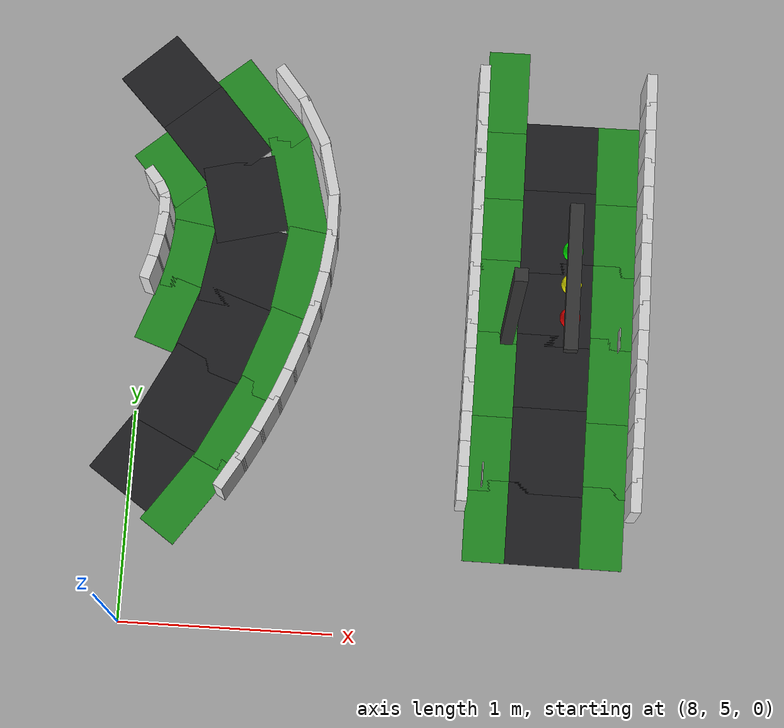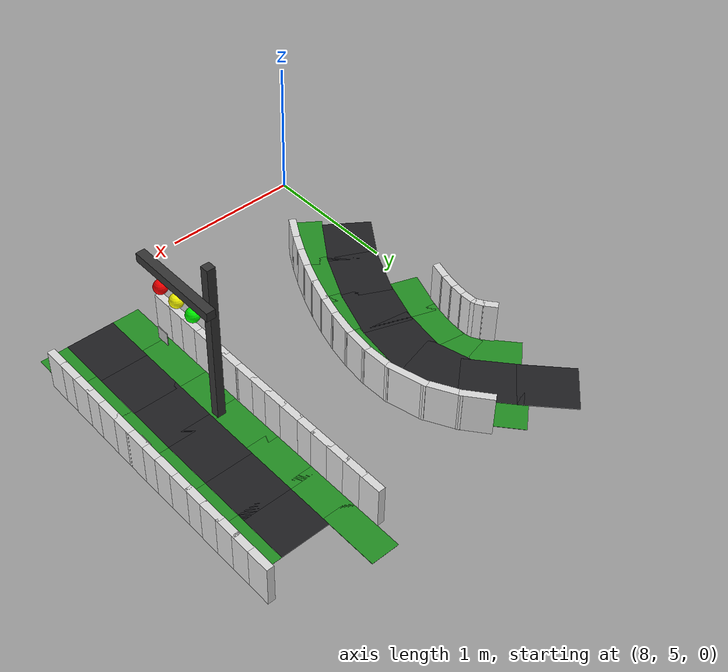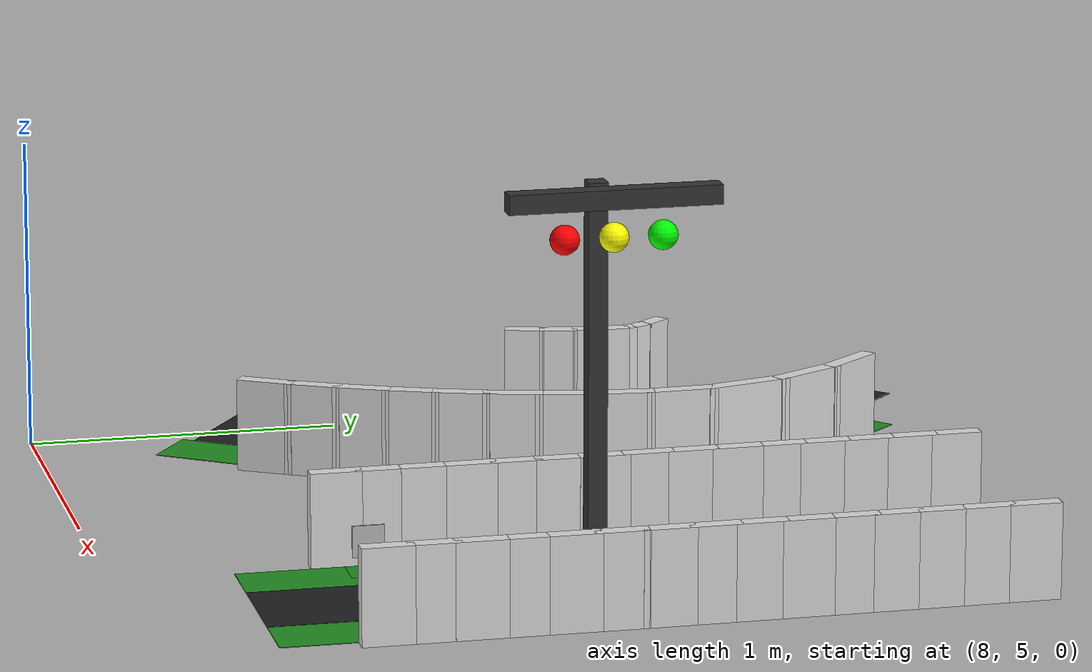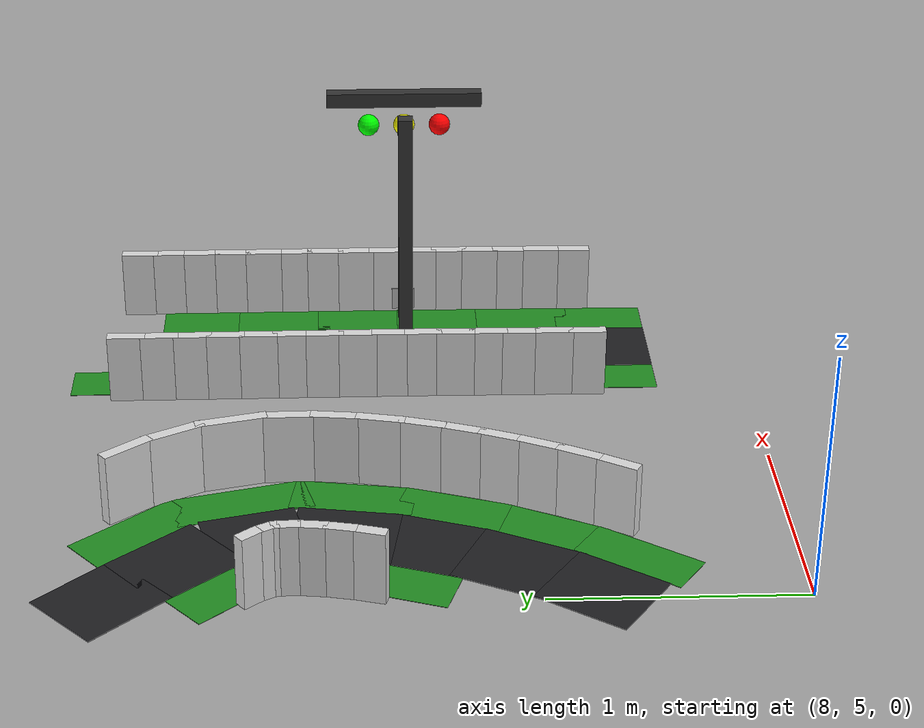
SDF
<sdf version="1.8">
 <world name="it_arena_track">
  <model name="it_arena_track_static">
   <static>true</static>
   <link name="surface_main_0">
    <pose>9.9654 6.6465 0.0015 0 0 1.57391</pose>
    <collision name="surface_main_0_col">
     <geometry><box><size>0.4140 0.3500 0.0030</size></box></geometry>
    </collision>
    <visual name="surface_main_0_vis">
     <geometry><box><size>0.4140 0.3500 0.0030</size></box></geometry>
     <material><ambient>0.12 0.12 0.13 1</ambient><diffuse>0.12 0.12 0.13 1</diffuse></material>
    </visual>
   </link>
   <link name="surface_main_1">
    <pose>9.9643 7.0064 0.0015 0 0 1.57391</pose>
    <collision name="surface_main_1_col">
     <geometry><box><size>0.4140 0.3500 0.0030</size></box></geometry>
    </collision>
    <visual name="surface_main_1_vis">
     <geometry><box><size>0.4140 0.3500 0.0030</size></box></geometry>
     <material><ambient>0.12 0.12 0.13 1</ambient><diffuse>0.12 0.12 0.13 1</diffuse></material>
    </visual>
   </link>
   <link name="surface_main_2">
    <pose>9.9633 7.3564 0.0015 0 0 1.57374</pose>
    <collision name="surface_main_2_col">
     <geometry><box><size>0.3910 0.3500 0.0030</size></box></geometry>
    </collision>
    <visual name="surface_main_2_vis">
     <geometry><box><size>0.3910 0.3500 0.0030</size></box></geometry>
     <material><ambient>0.12 0.12 0.13 1</ambient><diffuse>0.12 0.12 0.13 1</diffuse></material>
    </visual>
   </link>
   <link name="surface_main_40">
    <pose>8.0481 7.6364 0.0015 0 0 -0.81055</pose>
    <collision name="surface_main_40_col">
     <geometry><box><size>0.3908 0.3500 0.0030</size></box></geometry>
    </collision>
    <visual name="surface_main_40_vis">
     <geometry><box><size>0.3908 0.3500 0.0030</size></box></geometry>
     <material><ambient>0.12 0.12 0.13 1</ambient><diffuse>0.12 0.12 0.13 1</diffuse></material>
    </visual>
   </link>
   <link name="surface_main_41">
    <pose>8.2829 7.3778 0.0015 0 0 -0.85532</pose>
    <collision name="surface_main_41_col">
     <geometry><box><size>0.4128 0.3500 0.0030</size></box></geometry>
    </collision>
    <visual name="surface_main_41_vis">
     <geometry><box><size>0.4128 0.3500 0.0030</size></box></geometry>
     <material><ambient>0.12 0.12 0.13 1</ambient><diffuse>0.12 0.12 0.13 1</diffuse></material>
    </visual>
   </link>
   <link name="surface_main_42">
    <pose>8.4418 7.0802 0.0015 0 0 -1.32233</pose>
    <collision name="surface_main_42_col">
     <geometry><box><size>0.3847 0.3500 0.0030</size></box></geometry>
    </collision>
    <visual name="surface_main_42_vis">
     <geometry><box><size>0.3847 0.3500 0.0030</size></box></geometry>
     <material><ambient>0.12 0.12 0.13 1</ambient><diffuse>0.12 0.12 0.13 1</diffuse></material>
    </visual>
   </link>
   <link name="surface_main_43">
    <pose>8.4551 6.7408 0.0015 0 0 -1.72632</pose>
    <collision name="surface_main_43_col">
     <geometry><box><size>0.4129 0.3500 0.0030</size></box></geometry>
    </collision>
    <visual name="surface_main_43_vis">
     <geometry><box><size>0.4129 0.3500 0.0030</size></box></geometry>
     <material><ambient>0.12 0.12 0.13 1</ambient><diffuse>0.12 0.12 0.13 1</diffuse></material>
    </visual>
   </link>
   <link name="surface_main_44">
    <pose>8.3713 6.4030 0.0015 0 0 -1.90638</pose>
    <collision name="surface_main_44_col">
     <geometry><box><size>0.3906 0.3500 0.0030</size></box></geometry>
    </collision>
    <visual name="surface_main_44_vis">
     <geometry><box><size>0.3906 0.3500 0.0030</size></box></geometry>
     <material><ambient>0.12 0.12 0.13 1</ambient><diffuse>0.12 0.12 0.13 1</diffuse></material>
    </visual>
   </link>
   <link name="surface_main_45">
    <pose>8.2349 6.0818 0.0015 0 0 -2.03484</pose>
    <collision name="surface_main_45_col">
     <geometry><box><size>0.4137 0.3500 0.0030</size></box></geometry>
    </collision>
    <visual name="surface_main_45_vis">
     <geometry><box><size>0.4137 0.3500 0.0030</size></box></geometry>
     <material><ambient>0.12 0.12 0.13 1</ambient><diffuse>0.12 0.12 0.13 1</diffuse></material>
    </visual>
   </link>
   <link name="surface_main_46">
    <pose>8.0572 5.7820 0.0015 0 0 -2.18125</pose>
    <collision name="surface_main_46_col">
     <geometry><box><size>0.3902 0.3500 0.0030</size></box></geometry>
    </collision>
    <visual name="surface_main_46_vis">
     <geometry><box><size>0.3902 0.3500 0.0030</size></box></geometry>
     <material><ambient>0.12 0.12 0.13 1</ambient><diffuse>0.12 0.12 0.13 1</diffuse></material>
    </visual>
   </link>
   <link name="surface_main_130">
    <pose>9.9599 5.5766 0.0015 0 0 1.56391</pose>
    <collision name="surface_main_130_col">
     <geometry><box><size>0.3910 0.3500 0.0030</size></box></geometry>
    </collision>
    <visual name="surface_main_130_vis">
     <geometry><box><size>0.3910 0.3500 0.0030</size></box></geometry>
     <material><ambient>0.12 0.12 0.13 1</ambient><diffuse>0.12 0.12 0.13 1</diffuse></material>
    </visual>
   </link>
   <link name="surface_main_131">
    <pose>9.9623 5.9266 0.0015 0 0 1.56396</pose>
    <collision name="surface_main_131_col">
     <geometry><box><size>0.4140 0.3500 0.0030</size></box></geometry>
    </collision>
    <visual name="surface_main_131_vis">
     <geometry><box><size>0.4140 0.3500 0.0030</size></box></geometry>
     <material><ambient>0.12 0.12 0.13 1</ambient><diffuse>0.12 0.12 0.13 1</diffuse></material>
    </visual>
   </link>
   <link name="surface_main_132">
    <pose>9.9648 6.2865 0.0015 0 0 1.56405</pose>
    <collision name="surface_main_132_col">
     <geometry><box><size>0.4140 0.3500 0.0030</size></box></geometry>
    </collision>
    <visual name="surface_main_132_vis">
     <geometry><box><size>0.4140 0.3500 0.0030</size></box></geometry>
     <material><ambient>0.12 0.12 0.13 1</ambient><diffuse>0.12 0.12 0.13 1</diffuse></material>
    </visual>
   </link>
   <link name="grass_main_left_0">
    <pose>9.6904 6.6463 0.0010 0 0 1.57392</pose>
    <collision name="grass_main_left_0_col">
     <geometry><box><size>0.4127 0.2000 0.0020</size></box></geometry>
    </collision>
    <visual name="grass_main_left_0_vis">
     <geometry><box><size>0.4127 0.2000 0.0020</size></box></geometry>
     <material><ambient>0.13 0.55 0.13 1</ambient><diffuse>0.13 0.55 0.13 1</diffuse></material>
    </visual>
   </link>
   <link name="grass_main_left_1">
    <pose>9.6893 7.0058 0.0010 0 0 1.57391</pose>
    <collision name="grass_main_left_1_col">
     <geometry><box><size>0.4141 0.2000 0.0020</size></box></geometry>
    </collision>
    <visual name="grass_main_left_1_vis">
     <geometry><box><size>0.4141 0.2000 0.0020</size></box></geometry>
     <material><ambient>0.13 0.55 0.13 1</ambient><diffuse>0.13 0.55 0.13 1</diffuse></material>
    </visual>
   </link>
   <link name="grass_main_left_2">
    <pose>9.6883 7.3556 0.0010 0 0 1.57374</pose>
    <collision name="grass_main_left_2_col">
     <geometry><box><size>0.3905 0.2000 0.0020</size></box></geometry>
    </collision>
    <visual name="grass_main_left_2_vis">
     <geometry><box><size>0.3905 0.2000 0.0020</size></box></geometry>
     <material><ambient>0.13 0.55 0.13 1</ambient><diffuse>0.13 0.55 0.13 1</diffuse></material>
    </visual>
   </link>
   <link name="grass_main_left_3">
    <pose>9.6872 7.7053 0.0010 0 0 1.57396</pose>
    <collision name="grass_main_left_3_col">
     <geometry><box><size>0.4138 0.2000 0.0020</size></box></geometry>
    </collision>
    <visual name="grass_main_left_3_vis">
     <geometry><box><size>0.4138 0.2000 0.0020</size></box></geometry>
     <material><ambient>0.13 0.55 0.13 1</ambient><diffuse>0.13 0.55 0.13 1</diffuse></material>
    </visual>
   </link>
   <link name="grass_main_left_41">
    <pose>8.4961 7.5483 0.0010 0 0 -0.86175</pose>
    <collision name="grass_main_left_41_col">
     <geometry><box><size>0.4898 0.2000 0.0020</size></box></geometry>
    </collision>
    <visual name="grass_main_left_41_vis">
     <geometry><box><size>0.4898 0.2000 0.0020</size></box></geometry>
     <material><ambient>0.13 0.55 0.13 1</ambient><diffuse>0.13 0.55 0.13 1</diffuse></material>
    </visual>
   </link>
   <link name="grass_main_left_42">
    <pose>8.6963 7.1499 0.0010 0 0 -1.31639</pose>
    <collision name="grass_main_left_42_col">
     <geometry><box><size>0.5626 0.2000 0.0020</size></box></geometry>
    </collision>
    <visual name="grass_main_left_42_vis">
     <geometry><box><size>0.5626 0.2000 0.0020</size></box></geometry>
     <material><ambient>0.13 0.55 0.13 1</ambient><diffuse>0.13 0.55 0.13 1</diffuse></material>
    </visual>
   </link>
   <link name="grass_main_left_43">
    <pose>8.7255 6.7031 0.0010 0 0 -1.72366</pose>
    <collision name="grass_main_left_43_col">
     <geometry><box><size>0.4889 0.2000 0.0020</size></box></geometry>
    </collision>
    <visual name="grass_main_left_43_vis">
     <geometry><box><size>0.4889 0.2000 0.0020</size></box></geometry>
     <material><ambient>0.13 0.55 0.13 1</ambient><diffuse>0.13 0.55 0.13 1</diffuse></material>
    </visual>
   </link>
   <link name="grass_main_left_44">
    <pose>8.6309 6.3143 0.0010 0 0 -1.90576</pose>
    <collision name="grass_main_left_44_col">
     <geometry><box><size>0.4353 0.2000 0.0020</size></box></geometry>
    </collision>
    <visual name="grass_main_left_44_vis">
     <geometry><box><size>0.4353 0.2000 0.0020</size></box></geometry>
     <material><ambient>0.13 0.55 0.13 1</ambient><diffuse>0.13 0.55 0.13 1</diffuse></material>
    </visual>
   </link>
   <link name="grass_main_left_45">
    <pose>8.4802 5.9588 0.0010 0 0 -2.03493</pose>
    <collision name="grass_main_left_45_col">
     <geometry><box><size>0.4546 0.2000 0.0020</size></box></geometry>
    </collision>
    <visual name="grass_main_left_45_vis">
     <geometry><box><size>0.4546 0.2000 0.0020</size></box></geometry>
     <material><ambient>0.13 0.55 0.13 1</ambient><diffuse>0.13 0.55 0.13 1</diffuse></material>
    </visual>
   </link>
   <link name="grass_main_left_46">
    <pose>8.2764 5.6188 0.0010 0 0 -2.18571</pose>
    <collision name="grass_main_left_46_col">
     <geometry><box><size>0.4597 0.2000 0.0020</size></box></geometry>
    </collision>
    <visual name="grass_main_left_46_vis">
     <geometry><box><size>0.4597 0.2000 0.0020</size></box></geometry>
     <material><ambient>0.13 0.55 0.13 1</ambient><diffuse>0.13 0.55 0.13 1</diffuse></material>
    </visual>
   </link>
   <link name="grass_main_left_125">
    <pose>9.6849 5.5783 0.0010 0 0 1.56391</pose>
    <collision name="grass_main_left_125_col">
     <geometry><box><size>0.3910 0.2000 0.0020</size></box></geometry>
    </collision>
    <visual name="grass_main_left_125_vis">
     <geometry><box><size>0.3910 0.2000 0.0020</size></box></geometry>
     <material><ambient>0.13 0.55 0.13 1</ambient><diffuse>0.13 0.55 0.13 1</diffuse></material>
    </visual>
   </link>
   <link name="grass_main_left_126">
    <pose>9.6873 5.9282 0.0010 0 0 1.56396</pose>
    <collision name="grass_main_left_126_col">
     <geometry><box><size>0.4140 0.2000 0.0020</size></box></geometry>
    </collision>
    <visual name="grass_main_left_126_vis">
     <geometry><box><size>0.4140 0.2000 0.0020</size></box></geometry>
     <material><ambient>0.13 0.55 0.13 1</ambient><diffuse>0.13 0.55 0.13 1</diffuse></material>
    </visual>
   </link>
   <link name="grass_main_left_127">
    <pose>9.6898 6.2875 0.0010 0 0 1.56404</pose>
    <collision name="grass_main_left_127_col">
     <geometry><box><size>0.4125 0.2000 0.0020</size></box></geometry>
    </collision>
    <visual name="grass_main_left_127_vis">
     <geometry><box><size>0.4125 0.2000 0.0020</size></box></geometry>
     <material><ambient>0.13 0.55 0.13 1</ambient><diffuse>0.13 0.55 0.13 1</diffuse></material>
    </visual>
   </link>
   <link name="grass_main_right_0">
    <pose>10.2404 6.6466 0.0010 0 0 1.57390</pose>
    <collision name="grass_main_right_0_col">
     <geometry><box><size>0.4152 0.2000 0.0020</size></box></geometry>
    </collision>
    <visual name="grass_main_right_0_vis">
     <geometry><box><size>0.4152 0.2000 0.0020</size></box></geometry>
     <material><ambient>0.13 0.55 0.13 1</ambient><diffuse>0.13 0.55 0.13 1</diffuse></material>
    </visual>
   </link>
   <link name="grass_main_right_1">
    <pose>10.2393 7.0071 0.0010 0 0 1.57391</pose>
    <collision name="grass_main_right_1_col">
     <geometry><box><size>0.4138 0.2000 0.0020</size></box></geometry>
    </collision>
    <visual name="grass_main_right_1_vis">
     <geometry><box><size>0.4138 0.2000 0.0020</size></box></geometry>
     <material><ambient>0.13 0.55 0.13 1</ambient><diffuse>0.13 0.55 0.13 1</diffuse></material>
    </visual>
   </link>
   <link name="grass_main_right_2">
    <pose>10.2383 7.3572 0.0010 0 0 1.57374</pose>
    <collision name="grass_main_right_2_col">
     <geometry><box><size>0.3914 0.2000 0.0020</size></box></geometry>
    </collision>
    <visual name="grass_main_right_2_vis">
     <geometry><box><size>0.3914 0.2000 0.0020</size></box></geometry>
     <material><ambient>0.13 0.55 0.13 1</ambient><diffuse>0.13 0.55 0.13 1</diffuse></material>
    </visual>
   </link>
   <link name="grass_main_right_37">
    <pose>8.0697 7.2074 0.0010 0 0 -0.84594</pose>
    <collision name="grass_main_right_37_col">
     <geometry><box><size>0.3359 0.2000 0.0020</size></box></geometry>
    </collision>
    <visual name="grass_main_right_37_vis">
     <geometry><box><size>0.3359 0.2000 0.0020</size></box></geometry>
     <material><ambient>0.13 0.55 0.13 1</ambient><diffuse>0.13 0.55 0.13 1</diffuse></material>
    </visual>
   </link>
   <link name="grass_main_right_38">
    <pose>8.1872 7.0106 0.0010 0 0 -1.33849</pose>
    <collision name="grass_main_right_38_col">
     <geometry><box><size>0.2067 0.2000 0.0020</size></box></geometry>
    </collision>
    <visual name="grass_main_right_38_vis">
     <geometry><box><size>0.2067 0.2000 0.0020</size></box></geometry>
     <material><ambient>0.13 0.55 0.13 1</ambient><diffuse>0.13 0.55 0.13 1</diffuse></material>
    </visual>
   </link>
   <link name="grass_main_right_39">
    <pose>8.1847 6.7784 0.0010 0 0 -1.73018</pose>
    <collision name="grass_main_right_39_col">
     <geometry><box><size>0.3370 0.2000 0.0020</size></box></geometry>
    </collision>
    <visual name="grass_main_right_39_vis">
     <geometry><box><size>0.3370 0.2000 0.0020</size></box></geometry>
     <material><ambient>0.13 0.55 0.13 1</ambient><diffuse>0.13 0.55 0.13 1</diffuse></material>
    </visual>
   </link>
   <link name="grass_main_right_40">
    <pose>8.1118 6.4918 0.0010 0 0 -1.90716</pose>
    <collision name="grass_main_right_40_col">
     <geometry><box><size>0.3460 0.2000 0.0020</size></box></geometry>
    </collision>
    <visual name="grass_main_right_40_vis">
     <geometry><box><size>0.3460 0.2000 0.0020</size></box></geometry>
     <material><ambient>0.13 0.55 0.13 1</ambient><diffuse>0.13 0.55 0.13 1</diffuse></material>
    </visual>
   </link>
   <link name="grass_main_right_124">
    <pose>10.2349 5.5750 0.0010 0 0 1.56391</pose>
    <collision name="grass_main_right_124_col">
     <geometry><box><size>0.3910 0.2000 0.0020</size></box></geometry>
    </collision>
    <visual name="grass_main_right_124_vis">
     <geometry><box><size>0.3910 0.2000 0.0020</size></box></geometry>
     <material><ambient>0.13 0.55 0.13 1</ambient><diffuse>0.13 0.55 0.13 1</diffuse></material>
    </visual>
   </link>
   <link name="grass_main_right_125">
    <pose>10.2373 5.9249 0.0010 0 0 1.56396</pose>
    <collision name="grass_main_right_125_col">
     <geometry><box><size>0.4140 0.2000 0.0020</size></box></geometry>
    </collision>
    <visual name="grass_main_right_125_vis">
     <geometry><box><size>0.4140 0.2000 0.0020</size></box></geometry>
     <material><ambient>0.13 0.55 0.13 1</ambient><diffuse>0.13 0.55 0.13 1</diffuse></material>
    </visual>
   </link>
   <link name="grass_main_right_126">
    <pose>10.2398 6.2855 0.0010 0 0 1.56406</pose>
    <collision name="grass_main_right_126_col">
     <geometry><box><size>0.4154 0.2000 0.0020</size></box></geometry>
    </collision>
    <visual name="grass_main_right_126_vis">
     <geometry><box><size>0.4154 0.2000 0.0020</size></box></geometry>
     <material><ambient>0.13 0.55 0.13 1</ambient><diffuse>0.13 0.55 0.13 1</diffuse></material>
    </visual>
   </link>
   <link name="walls_main_left_0">
    <pose>9.5658 6.5361 0.1500 0 0 1.57411</pose>
    <collision name="walls_main_left_0_col">
     <geometry><box><size>0.1587 0.0500 0.3000</size></box></geometry>
     <surface><friction><ode><mu>0.8</mu><mu2>0.8</mu2></ode></friction></surface>
    </collision>
    <visual name="walls_main_left_0_vis">
     <geometry><box><size>0.1587 0.0500 0.3000</size></box></geometry>
     <material><ambient>0.85 0.85 0.85 1</ambient><diffuse>0.85 0.85 0.85 1</diffuse></material>
    </visual>
   </link>
   <link name="walls_main_left_1">
    <pose>9.5653 6.6754 0.1500 0 0 1.57365</pose>
    <collision name="walls_main_left_1_col">
     <geometry><box><size>0.1617 0.0500 0.3000</size></box></geometry>
     <surface><friction><ode><mu>0.8</mu><mu2>0.8</mu2></ode></friction></surface>
    </collision>
    <visual name="walls_main_left_1_vis">
     <geometry><box><size>0.1617 0.0500 0.3000</size></box></geometry>
     <material><ambient>0.85 0.85 0.85 1</ambient><diffuse>0.85 0.85 0.85 1</diffuse></material>
    </visual>
   </link>
   <link name="walls_main_left_2">
    <pose>9.5649 6.8153 0.1500 0 0 1.57380</pose>
    <collision name="walls_main_left_2_col">
     <geometry><box><size>0.1601 0.0500 0.3000</size></box></geometry>
     <surface><friction><ode><mu>0.8</mu><mu2>0.8</mu2></ode></friction></surface>
    </collision>
    <visual name="walls_main_left_2_vis">
     <geometry><box><size>0.1601 0.0500 0.3000</size></box></geometry>
     <material><ambient>0.85 0.85 0.85 1</ambient><diffuse>0.85 0.85 0.85 1</diffuse></material>
    </visual>
   </link>
   <link name="walls_main_left_3">
    <pose>9.5645 6.9551 0.1500 0 0 1.57394</pose>
    <collision name="walls_main_left_3_col">
     <geometry><box><size>0.1617 0.0500 0.3000</size></box></geometry>
     <surface><friction><ode><mu>0.8</mu><mu2>0.8</mu2></ode></friction></surface>
    </collision>
    <visual name="walls_main_left_3_vis">
     <geometry><box><size>0.1617 0.0500 0.3000</size></box></geometry>
     <material><ambient>0.85 0.85 0.85 1</ambient><diffuse>0.85 0.85 0.85 1</diffuse></material>
    </visual>
   </link>
   <link name="walls_main_left_4">
    <pose>9.5640 7.0953 0.1500 0 0 1.57422</pose>
    <collision name="walls_main_left_4_col">
     <geometry><box><size>0.1608 0.0500 0.3000</size></box></geometry>
     <surface><friction><ode><mu>0.8</mu><mu2>0.8</mu2></ode></friction></surface>
    </collision>
    <visual name="walls_main_left_4_vis">
     <geometry><box><size>0.1608 0.0500 0.3000</size></box></geometry>
     <material><ambient>0.85 0.85 0.85 1</ambient><diffuse>0.85 0.85 0.85 1</diffuse></material>
    </visual>
   </link>
   <link name="walls_main_left_5">
    <pose>9.5636 7.2353 0.1500 0 0 1.57351</pose>
    <collision name="walls_main_left_5_col">
     <geometry><box><size>0.1612 0.0500 0.3000</size></box></geometry>
     <surface><friction><ode><mu>0.8</mu><mu2>0.8</mu2></ode></friction></surface>
    </collision>
    <visual name="walls_main_left_5_vis">
     <geometry><box><size>0.1612 0.0500 0.3000</size></box></geometry>
     <material><ambient>0.85 0.85 0.85 1</ambient><diffuse>0.85 0.85 0.85 1</diffuse></material>
    </visual>
   </link>
   <link name="walls_main_left_6">
    <pose>9.5632 7.3751 0.1500 0 0 1.57394</pose>
    <collision name="walls_main_left_6_col">
     <geometry><box><size>0.1603 0.0500 0.3000</size></box></geometry>
     <surface><friction><ode><mu>0.8</mu><mu2>0.8</mu2></ode></friction></surface>
    </collision>
    <visual name="walls_main_left_6_vis">
     <geometry><box><size>0.1603 0.0500 0.3000</size></box></geometry>
     <material><ambient>0.85 0.85 0.85 1</ambient><diffuse>0.85 0.85 0.85 1</diffuse></material>
    </visual>
   </link>
   <link name="walls_main_left_7">
    <pose>9.5628 7.5152 0.1500 0 0 1.57380</pose>
    <collision name="walls_main_left_7_col">
     <geometry><box><size>0.1619 0.0500 0.3000</size></box></geometry>
     <surface><friction><ode><mu>0.8</mu><mu2>0.8</mu2></ode></friction></surface>
    </collision>
    <visual name="walls_main_left_7_vis">
     <geometry><box><size>0.1619 0.0500 0.3000</size></box></geometry>
     <material><ambient>0.85 0.85 0.85 1</ambient><diffuse>0.85 0.85 0.85 1</diffuse></material>
    </visual>
   </link>
   <link name="walls_main_left_8">
    <pose>9.5624 7.6553 0.1500 0 0 1.57365</pose>
    <collision name="walls_main_left_8_col">
     <geometry><box><size>0.1603 0.0500 0.3000</size></box></geometry>
     <surface><friction><ode><mu>0.8</mu><mu2>0.8</mu2></ode></friction></surface>
    </collision>
    <visual name="walls_main_left_8_vis">
     <geometry><box><size>0.1603 0.0500 0.3000</size></box></geometry>
     <material><ambient>0.85 0.85 0.85 1</ambient><diffuse>0.85 0.85 0.85 1</diffuse></material>
    </visual>
   </link>
   <link name="walls_main_left_104">
    <pose>8.6478 7.5783 0.1500 0 0 -0.89386</pose>
    <collision name="walls_main_left_104_col">
     <geometry><box><size>0.2237 0.0500 0.3000</size></box></geometry>
     <surface><friction><ode><mu>0.8</mu><mu2>0.8</mu2></ode></friction></surface>
    </collision>
    <visual name="walls_main_left_104_vis">
     <geometry><box><size>0.2237 0.0500 0.3000</size></box></geometry>
     <material><ambient>0.85 0.85 0.85 1</ambient><diffuse>0.85 0.85 0.85 1</diffuse></material>
    </visual>
   </link>
   <link name="walls_main_left_105">
    <pose>8.7625 7.4032 0.1500 0 0 -1.07463</pose>
    <collision name="walls_main_left_105_col">
     <geometry><box><size>0.2597 0.0500 0.3000</size></box></geometry>
     <surface><friction><ode><mu>0.8</mu><mu2>0.8</mu2></ode></friction></surface>
    </collision>
    <visual name="walls_main_left_105_vis">
     <geometry><box><size>0.2597 0.0500 0.3000</size></box></geometry>
     <material><ambient>0.85 0.85 0.85 1</ambient><diffuse>0.85 0.85 0.85 1</diffuse></material>
    </visual>
   </link>
   <link name="walls_main_left_106">
    <pose>8.8467 7.1817 0.1500 0 0 -1.32621</pose>
    <collision name="walls_main_left_106_col">
     <geometry><box><size>0.2897 0.0500 0.3000</size></box></geometry>
     <surface><friction><ode><mu>0.8</mu><mu2>0.8</mu2></ode></friction></surface>
    </collision>
    <visual name="walls_main_left_106_vis">
     <geometry><box><size>0.2897 0.0500 0.3000</size></box></geometry>
     <material><ambient>0.85 0.85 0.85 1</ambient><diffuse>0.85 0.85 0.85 1</diffuse></material>
    </visual>
   </link>
   <link name="walls_main_left_107">
    <pose>8.8790 6.9575 0.1500 0 0 -1.55325</pose>
    <collision name="walls_main_left_107_col">
     <geometry><box><size>0.2346 0.0500 0.3000</size></box></geometry>
     <surface><friction><ode><mu>0.8</mu><mu2>0.8</mu2></ode></friction></surface>
    </collision>
    <visual name="walls_main_left_107_vis">
     <geometry><box><size>0.2346 0.0500 0.3000</size></box></geometry>
     <material><ambient>0.85 0.85 0.85 1</ambient><diffuse>0.85 0.85 0.85 1</diffuse></material>
    </visual>
   </link>
   <link name="walls_main_left_108">
    <pose>8.8706 6.7655 0.1500 0 0 -1.68362</pose>
    <collision name="walls_main_left_108_col">
     <geometry><box><size>0.2083 0.0500 0.3000</size></box></geometry>
     <surface><friction><ode><mu>0.8</mu><mu2>0.8</mu2></ode></friction></surface>
    </collision>
    <visual name="walls_main_left_108_vis">
     <geometry><box><size>0.2083 0.0500 0.3000</size></box></geometry>
     <material><ambient>0.85 0.85 0.85 1</ambient><diffuse>0.85 0.85 0.85 1</diffuse></material>
    </visual>
   </link>
   <link name="walls_main_left_109">
    <pose>8.8431 6.5912 0.1500 0 0 -1.77348</pose>
    <collision name="walls_main_left_109_col">
     <geometry><box><size>0.1980 0.0500 0.3000</size></box></geometry>
     <surface><friction><ode><mu>0.8</mu><mu2>0.8</mu2></ode></friction></surface>
    </collision>
    <visual name="walls_main_left_109_vis">
     <geometry><box><size>0.1980 0.0500 0.3000</size></box></geometry>
     <material><ambient>0.85 0.85 0.85 1</ambient><diffuse>0.85 0.85 0.85 1</diffuse></material>
    </visual>
   </link>
   <link name="walls_main_left_110">
    <pose>8.8030 6.4267 0.1500 0 0 -1.84730</pose>
    <collision name="walls_main_left_110_col">
     <geometry><box><size>0.1917 0.0500 0.3000</size></box></geometry>
     <surface><friction><ode><mu>0.8</mu><mu2>0.8</mu2></ode></friction></surface>
    </collision>
    <visual name="walls_main_left_110_vis">
     <geometry><box><size>0.1917 0.0500 0.3000</size></box></geometry>
     <material><ambient>0.85 0.85 0.85 1</ambient><diffuse>0.85 0.85 0.85 1</diffuse></material>
    </visual>
   </link>
   <link name="walls_main_left_111">
    <pose>8.7536 6.2704 0.1500 0 0 -1.90680</pose>
    <collision name="walls_main_left_111_col">
     <geometry><box><size>0.1854 0.0500 0.3000</size></box></geometry>
     <surface><friction><ode><mu>0.8</mu><mu2>0.8</mu2></ode></friction></surface>
    </collision>
    <visual name="walls_main_left_111_vis">
     <geometry><box><size>0.1854 0.0500 0.3000</size></box></geometry>
     <material><ambient>0.85 0.85 0.85 1</ambient><diffuse>0.85 0.85 0.85 1</diffuse></material>
    </visual>
   </link>
   <link name="walls_main_left_112">
    <pose>8.6967 6.1202 0.1500 0 0 -1.95983</pose>
    <collision name="walls_main_left_112_col">
     <geometry><box><size>0.1844 0.0500 0.3000</size></box></geometry>
     <surface><friction><ode><mu>0.8</mu><mu2>0.8</mu2></ode></friction></surface>
    </collision>
    <visual name="walls_main_left_112_vis">
     <geometry><box><size>0.1844 0.0500 0.3000</size></box></geometry>
     <material><ambient>0.85 0.85 0.85 1</ambient><diffuse>0.85 0.85 0.85 1</diffuse></material>
    </visual>
   </link>
   <link name="walls_main_left_113">
    <pose>8.6319 5.9729 0.1500 0 0 -2.01021</pose>
    <collision name="walls_main_left_113_col">
     <geometry><box><size>0.1857 0.0500 0.3000</size></box></geometry>
     <surface><friction><ode><mu>0.8</mu><mu2>0.8</mu2></ode></friction></surface>
    </collision>
    <visual name="walls_main_left_113_vis">
     <geometry><box><size>0.1857 0.0500 0.3000</size></box></geometry>
     <material><ambient>0.85 0.85 0.85 1</ambient><diffuse>0.85 0.85 0.85 1</diffuse></material>
    </visual>
   </link>
   <link name="walls_main_left_114">
    <pose>8.5603 5.8297 0.1500 0 0 -2.05863</pose>
    <collision name="walls_main_left_114_col">
     <geometry><box><size>0.1827 0.0500 0.3000</size></box></geometry>
     <surface><friction><ode><mu>0.8</mu><mu2>0.8</mu2></ode></friction></surface>
    </collision>
    <visual name="walls_main_left_114_vis">
     <geometry><box><size>0.1827 0.0500 0.3000</size></box></geometry>
     <material><ambient>0.85 0.85 0.85 1</ambient><diffuse>0.85 0.85 0.85 1</diffuse></material>
    </visual>
   </link>
   <link name="walls_main_left_115">
    <pose>8.4821 5.6910 0.1500 0 0 -2.11034</pose>
    <collision name="walls_main_left_115_col">
     <geometry><box><size>0.1836 0.0500 0.3000</size></box></geometry>
     <surface><friction><ode><mu>0.8</mu><mu2>0.8</mu2></ode></friction></surface>
    </collision>
    <visual name="walls_main_left_115_vis">
     <geometry><box><size>0.1836 0.0500 0.3000</size></box></geometry>
     <material><ambient>0.85 0.85 0.85 1</ambient><diffuse>0.85 0.85 0.85 1</diffuse></material>
    </visual>
   </link>
   <link name="walls_main_left_316">
    <pose>9.5608 5.6993 0.1500 0 0 1.56408</pose>
    <collision name="walls_main_left_316_col">
     <geometry><box><size>0.1608 0.0500 0.3000</size></box></geometry>
     <surface><friction><ode><mu>0.8</mu><mu2>0.8</mu2></ode></friction></surface>
    </collision>
    <visual name="walls_main_left_316_vis">
     <geometry><box><size>0.1608 0.0500 0.3000</size></box></geometry>
     <material><ambient>0.85 0.85 0.85 1</ambient><diffuse>0.85 0.85 0.85 1</diffuse></material>
    </visual>
   </link>
   <link name="walls_main_left_317">
    <pose>9.5617 5.8395 0.1500 0 0 1.56367</pose>
    <collision name="walls_main_left_317_col">
     <geometry><box><size>0.1617 0.0500 0.3000</size></box></geometry>
     <surface><friction><ode><mu>0.8</mu><mu2>0.8</mu2></ode></friction></surface>
    </collision>
    <visual name="walls_main_left_317_vis">
     <geometry><box><size>0.1617 0.0500 0.3000</size></box></geometry>
     <material><ambient>0.85 0.85 0.85 1</ambient><diffuse>0.85 0.85 0.85 1</diffuse></material>
    </visual>
   </link>
   <link name="walls_main_left_318">
    <pose>9.5627 5.9798 0.1500 0 0 1.56423</pose>
    <collision name="walls_main_left_318_col">
     <geometry><box><size>0.1610 0.0500 0.3000</size></box></geometry>
     <surface><friction><ode><mu>0.8</mu><mu2>0.8</mu2></ode></friction></surface>
    </collision>
    <visual name="walls_main_left_318_vis">
     <geometry><box><size>0.1610 0.0500 0.3000</size></box></geometry>
     <material><ambient>0.85 0.85 0.85 1</ambient><diffuse>0.85 0.85 0.85 1</diffuse></material>
    </visual>
   </link>
   <link name="walls_main_left_319">
    <pose>9.5637 6.1194 0.1500 0 0 1.56364</pose>
    <collision name="walls_main_left_319_col">
     <geometry><box><size>0.1603 0.0500 0.3000</size></box></geometry>
     <surface><friction><ode><mu>0.8</mu><mu2>0.8</mu2></ode></friction></surface>
    </collision>
    <visual name="walls_main_left_319_vis">
     <geometry><box><size>0.1603 0.0500 0.3000</size></box></geometry>
     <material><ambient>0.85 0.85 0.85 1</ambient><diffuse>0.85 0.85 0.85 1</diffuse></material>
    </visual>
   </link>
   <link name="walls_main_left_320">
    <pose>9.5646 6.2593 0.1500 0 0 1.56410</pose>
    <collision name="walls_main_left_320_col">
     <geometry><box><size>0.1612 0.0500 0.3000</size></box></geometry>
     <surface><friction><ode><mu>0.8</mu><mu2>0.8</mu2></ode></friction></surface>
    </collision>
    <visual name="walls_main_left_320_vis">
     <geometry><box><size>0.1612 0.0500 0.3000</size></box></geometry>
     <material><ambient>0.85 0.85 0.85 1</ambient><diffuse>0.85 0.85 0.85 1</diffuse></material>
    </visual>
   </link>
   <link name="walls_main_left_321">
    <pose>9.5656 6.3982 0.1500 0 0 1.56426</pose>
    <collision name="walls_main_left_321_col">
     <geometry><box><size>0.1584 0.0500 0.3000</size></box></geometry>
     <surface><friction><ode><mu>0.8</mu><mu2>0.8</mu2></ode></friction></surface>
    </collision>
    <visual name="walls_main_left_321_vis">
     <geometry><box><size>0.1584 0.0500 0.3000</size></box></geometry>
     <material><ambient>0.85 0.85 0.85 1</ambient><diffuse>0.85 0.85 0.85 1</diffuse></material>
    </visual>
   </link>
   <link name="walls_main_right_0">
    <pose>10.3658 6.5369 0.1500 0 0 1.57405</pose>
    <collision name="walls_main_right_0_col">
     <geometry><box><size>0.1632 0.0500 0.3000</size></box></geometry>
     <surface><friction><ode><mu>0.8</mu><mu2>0.8</mu2></ode></friction></surface>
    </collision>
    <visual name="walls_main_right_0_vis">
     <geometry><box><size>0.1632 0.0500 0.3000</size></box></geometry>
     <material><ambient>0.85 0.85 0.85 1</ambient><diffuse>0.85 0.85 0.85 1</diffuse></material>
    </visual>
   </link>
   <link name="walls_main_right_1">
    <pose>10.3653 6.6776 0.1500 0 0 1.57365</pose>
    <collision name="walls_main_right_1_col">
     <geometry><box><size>0.1603 0.0500 0.3000</size></box></geometry>
     <surface><friction><ode><mu>0.8</mu><mu2>0.8</mu2></ode></friction></surface>
    </collision>
    <visual name="walls_main_right_1_vis">
     <geometry><box><size>0.1603 0.0500 0.3000</size></box></geometry>
     <material><ambient>0.85 0.85 0.85 1</ambient><diffuse>0.85 0.85 0.85 1</diffuse></material>
    </visual>
   </link>
   <link name="walls_main_right_2">
    <pose>10.3649 6.8177 0.1500 0 0 1.57380</pose>
    <collision name="walls_main_right_2_col">
     <geometry><box><size>0.1619 0.0500 0.3000</size></box></geometry>
     <surface><friction><ode><mu>0.8</mu><mu2>0.8</mu2></ode></friction></surface>
    </collision>
    <visual name="walls_main_right_2_vis">
     <geometry><box><size>0.1619 0.0500 0.3000</size></box></geometry>
     <material><ambient>0.85 0.85 0.85 1</ambient><diffuse>0.85 0.85 0.85 1</diffuse></material>
    </visual>
   </link>
   <link name="walls_main_right_3">
    <pose>10.3645 6.9577 0.1500 0 0 1.57394</pose>
    <collision name="walls_main_right_3_col">
     <geometry><box><size>0.1603 0.0500 0.3000</size></box></geometry>
     <surface><friction><ode><mu>0.8</mu><mu2>0.8</mu2></ode></friction></surface>
    </collision>
    <visual name="walls_main_right_3_vis">
     <geometry><box><size>0.1603 0.0500 0.3000</size></box></geometry>
     <material><ambient>0.85 0.85 0.85 1</ambient><diffuse>0.85 0.85 0.85 1</diffuse></material>
    </visual>
   </link>
   <link name="walls_main_right_4">
    <pose>10.3640 7.0975 0.1500 0 0 1.57422</pose>
    <collision name="walls_main_right_4_col">
     <geometry><box><size>0.1612 0.0500 0.3000</size></box></geometry>
     <surface><friction><ode><mu>0.8</mu><mu2>0.8</mu2></ode></friction></surface>
    </collision>
    <visual name="walls_main_right_4_vis">
     <geometry><box><size>0.1612 0.0500 0.3000</size></box></geometry>
     <material><ambient>0.85 0.85 0.85 1</ambient><diffuse>0.85 0.85 0.85 1</diffuse></material>
    </visual>
   </link>
   <link name="walls_main_right_5">
    <pose>10.3636 7.2375 0.1500 0 0 1.57351</pose>
    <collision name="walls_main_right_5_col">
     <geometry><box><size>0.1607 0.0500 0.3000</size></box></geometry>
     <surface><friction><ode><mu>0.8</mu><mu2>0.8</mu2></ode></friction></surface>
    </collision>
    <visual name="walls_main_right_5_vis">
     <geometry><box><size>0.1607 0.0500 0.3000</size></box></geometry>
     <material><ambient>0.85 0.85 0.85 1</ambient><diffuse>0.85 0.85 0.85 1</diffuse></material>
    </visual>
   </link>
   <link name="walls_main_right_6">
    <pose>10.3632 7.3777 0.1500 0 0 1.57394</pose>
    <collision name="walls_main_right_6_col">
     <geometry><box><size>0.1617 0.0500 0.3000</size></box></geometry>
     <surface><friction><ode><mu>0.8</mu><mu2>0.8</mu2></ode></friction></surface>
    </collision>
    <visual name="walls_main_right_6_vis">
     <geometry><box><size>0.1617 0.0500 0.3000</size></box></geometry>
     <material><ambient>0.85 0.85 0.85 1</ambient><diffuse>0.85 0.85 0.85 1</diffuse></material>
    </visual>
   </link>
   <link name="walls_main_right_7">
    <pose>10.3628 7.5176 0.1500 0 0 1.57380</pose>
    <collision name="walls_main_right_7_col">
     <geometry><box><size>0.1601 0.0500 0.3000</size></box></geometry>
     <surface><friction><ode><mu>0.8</mu><mu2>0.8</mu2></ode></friction></surface>
    </collision>
    <visual name="walls_main_right_7_vis">
     <geometry><box><size>0.1601 0.0500 0.3000</size></box></geometry>
     <material><ambient>0.85 0.85 0.85 1</ambient><diffuse>0.85 0.85 0.85 1</diffuse></material>
    </visual>
   </link>
   <link name="walls_main_right_8">
    <pose>10.3624 7.6575 0.1500 0 0 1.57365</pose>
    <collision name="walls_main_right_8_col">
     <geometry><box><size>0.1617 0.0500 0.3000</size></box></geometry>
     <surface><friction><ode><mu>0.8</mu><mu2>0.8</mu2></ode></friction></surface>
    </collision>
    <visual name="walls_main_right_8_vis">
     <geometry><box><size>0.1617 0.0500 0.3000</size></box></geometry>
     <material><ambient>0.85 0.85 0.85 1</ambient><diffuse>0.85 0.85 0.85 1</diffuse></material>
    </visual>
   </link>
   <link name="walls_main_right_95">
    <pose>8.0224 7.0825 0.1500 0 0 -0.88541</pose>
    <collision name="walls_main_right_95_col">
     <geometry><box><size>0.0980 0.0500 0.3000</size></box></geometry>
     <surface><friction><ode><mu>0.8</mu><mu2>0.8</mu2></ode></friction></surface>
    </collision>
    <visual name="walls_main_right_95_vis">
     <geometry><box><size>0.0980 0.0500 0.3000</size></box></geometry>
     <material><ambient>0.85 0.85 0.85 1</ambient><diffuse>0.85 0.85 0.85 1</diffuse></material>
    </visual>
   </link>
   <link name="walls_main_right_96">
    <pose>8.0622 7.0260 0.1500 0 0 -1.06804</pose>
    <collision name="walls_main_right_96_col">
     <geometry><box><size>0.0616 0.0500 0.3000</size></box></geometry>
     <surface><friction><ode><mu>0.8</mu><mu2>0.8</mu2></ode></friction></surface>
    </collision>
    <visual name="walls_main_right_96_vis">
     <geometry><box><size>0.0616 0.0500 0.3000</size></box></geometry>
     <material><ambient>0.85 0.85 0.85 1</ambient><diffuse>0.85 0.85 0.85 1</diffuse></material>
    </visual>
   </link>
   <link name="walls_main_right_97">
    <pose>8.0783 6.9895 0.1500 0 0 -1.33095</pose>
    <collision name="walls_main_right_97_col">
     <geometry><box><size>0.0309 0.0500 0.3000</size></box></geometry>
     <surface><friction><ode><mu>0.8</mu><mu2>0.8</mu2></ode></friction></surface>
    </collision>
    <visual name="walls_main_right_97_vis">
     <geometry><box><size>0.0309 0.0500 0.3000</size></box></geometry>
     <material><ambient>0.85 0.85 0.85 1</ambient><diffuse>0.85 0.85 0.85 1</diffuse></material>
    </visual>
   </link>
   <link name="walls_main_right_98">
    <pose>8.0818 6.9386 0.1500 0 0 -1.56374</pose>
    <collision name="walls_main_right_98_col">
     <geometry><box><size>0.0870 0.0500 0.3000</size></box></geometry>
     <surface><friction><ode><mu>0.8</mu><mu2>0.8</mu2></ode></friction></surface>
    </collision>
    <visual name="walls_main_right_98_vis">
     <geometry><box><size>0.0870 0.0500 0.3000</size></box></geometry>
     <material><ambient>0.85 0.85 0.85 1</ambient><diffuse>0.85 0.85 0.85 1</diffuse></material>
    </visual>
   </link>
   <link name="walls_main_right_99">
    <pose>8.0763 6.8518 0.1500 0 0 -1.68748</pose>
    <collision name="walls_main_right_99_col">
     <geometry><box><size>0.1134 0.0500 0.3000</size></box></geometry>
     <surface><friction><ode><mu>0.8</mu><mu2>0.8</mu2></ode></friction></surface>
    </collision>
    <visual name="walls_main_right_99_vis">
     <geometry><box><size>0.1134 0.0500 0.3000</size></box></geometry>
     <material><ambient>0.85 0.85 0.85 1</ambient><diffuse>0.85 0.85 0.85 1</diffuse></material>
    </visual>
   </link>
   <link name="walls_main_right_100">
    <pose>8.0597 6.7501 0.1500 0 0 -1.77499</pose>
    <collision name="walls_main_right_100_col">
     <geometry><box><size>0.1238 0.0500 0.3000</size></box></geometry>
     <surface><friction><ode><mu>0.8</mu><mu2>0.8</mu2></ode></friction></surface>
    </collision>
    <visual name="walls_main_right_100_vis">
     <geometry><box><size>0.1238 0.0500 0.3000</size></box></geometry>
     <material><ambient>0.85 0.85 0.85 1</ambient><diffuse>0.85 0.85 0.85 1</diffuse></material>
    </visual>
   </link>
   <link name="walls_main_right_101">
    <pose>8.0332 6.6430 0.1500 0 0 -1.84851</pose>
    <collision name="walls_main_right_101_col">
     <geometry><box><size>0.1302 0.0500 0.3000</size></box></geometry>
     <surface><friction><ode><mu>0.8</mu><mu2>0.8</mu2></ode></friction></surface>
    </collision>
    <visual name="walls_main_right_101_vis">
     <geometry><box><size>0.1302 0.0500 0.3000</size></box></geometry>
     <material><ambient>0.85 0.85 0.85 1</ambient><diffuse>0.85 0.85 0.85 1</diffuse></material>
    </visual>
   </link>
   <link name="walls_main_right_312">
    <pose>10.3608 5.6939 0.1500 0 0 1.56408</pose>
    <collision name="walls_main_right_312_col">
     <geometry><box><size>0.1612 0.0500 0.3000</size></box></geometry>
     <surface><friction><ode><mu>0.8</mu><mu2>0.8</mu2></ode></friction></surface>
    </collision>
    <visual name="walls_main_right_312_vis">
     <geometry><box><size>0.1612 0.0500 0.3000</size></box></geometry>
     <material><ambient>0.85 0.85 0.85 1</ambient><diffuse>0.85 0.85 0.85 1</diffuse></material>
    </visual>
   </link>
   <link name="walls_main_right_313">
    <pose>10.3617 5.8337 0.1500 0 0 1.56367</pose>
    <collision name="walls_main_right_313_col">
     <geometry><box><size>0.1603 0.0500 0.3000</size></box></geometry>
     <surface><friction><ode><mu>0.8</mu><mu2>0.8</mu2></ode></friction></surface>
    </collision>
    <visual name="walls_main_right_313_vis">
     <geometry><box><size>0.1603 0.0500 0.3000</size></box></geometry>
     <material><ambient>0.85 0.85 0.85 1</ambient><diffuse>0.85 0.85 0.85 1</diffuse></material>
    </visual>
   </link>
   <link name="walls_main_right_314">
    <pose>10.3627 5.9734 0.1500 0 0 1.56422</pose>
    <collision name="walls_main_right_314_col">
     <geometry><box><size>0.1610 0.0500 0.3000</size></box></geometry>
     <surface><friction><ode><mu>0.8</mu><mu2>0.8</mu2></ode></friction></surface>
    </collision>
    <visual name="walls_main_right_314_vis">
     <geometry><box><size>0.1610 0.0500 0.3000</size></box></geometry>
     <material><ambient>0.85 0.85 0.85 1</ambient><diffuse>0.85 0.85 0.85 1</diffuse></material>
    </visual>
   </link>
   <link name="walls_main_right_315">
    <pose>10.3636 6.1136 0.1500 0 0 1.56364</pose>
    <collision name="walls_main_right_315_col">
     <geometry><box><size>0.1616 0.0500 0.3000</size></box></geometry>
     <surface><friction><ode><mu>0.8</mu><mu2>0.8</mu2></ode></friction></surface>
    </collision>
    <visual name="walls_main_right_315_vis">
     <geometry><box><size>0.1616 0.0500 0.3000</size></box></geometry>
     <material><ambient>0.85 0.85 0.85 1</ambient><diffuse>0.85 0.85 0.85 1</diffuse></material>
    </visual>
   </link>
   <link name="walls_main_right_316">
    <pose>10.3646 6.2538 0.1500 0 0 1.56410</pose>
    <collision name="walls_main_right_316_col">
     <geometry><box><size>0.1608 0.0500 0.3000</size></box></geometry>
     <surface><friction><ode><mu>0.8</mu><mu2>0.8</mu2></ode></friction></surface>
    </collision>
    <visual name="walls_main_right_316_vis">
     <geometry><box><size>0.1608 0.0500 0.3000</size></box></geometry>
     <material><ambient>0.85 0.85 0.85 1</ambient><diffuse>0.85 0.85 0.85 1</diffuse></material>
    </visual>
   </link>
   <link name="walls_main_right_317">
    <pose>10.3655 6.3948 0.1500 0 0 1.56433</pose>
    <collision name="walls_main_right_317_col">
     <geometry><box><size>0.1636 0.0500 0.3000</size></box></geometry>
     <surface><friction><ode><mu>0.8</mu><mu2>0.8</mu2></ode></friction></surface>
    </collision>
    <visual name="walls_main_right_317_vis">
     <geometry><box><size>0.1636 0.0500 0.3000</size></box></geometry>
     <material><ambient>0.85 0.85 0.85 1</ambient><diffuse>0.85 0.85 0.85 1</diffuse></material>
    </visual>
   </link>
   <link name="grid_slot_2">
    <pose>9.8757 5.6804 0.0012 0 0 1.56390</pose>
    <visual name="grid_slot_2_vis">
     <geometry><box><size>0.2000 0.1200 0.001</size></box></geometry>
     <material><ambient>1 1 1 1</ambient><diffuse>1 1 1 1</diffuse></material>
    </visual>
   </link>
   <link name="tl_post">
    <pose>9.7410 6.4668 0.6000 0 0 1.56941</pose>
    <collision name="tl_post_col"><geometry><box><size>0.0600 0.0600 1.2000</size></box></geometry></collision>
    <visual name="tl_post_vis">
     <geometry><box><size>0.0600 0.0600 1.2000</size></box></geometry>
     <material><ambient>0.2 0.2 0.2 1</ambient><diffuse>0.2 0.2 0.2 1</diffuse></material>
    </visual>
   </link>
   <link name="tl_beam">
    <pose>9.9660 6.4665 1.2000 0 0 1.56941</pose>
    <collision name="tl_beam_col"><geometry><box><size>0.6500 0.0600 0.0600</size></box></geometry></collision>
    <visual name="tl_beam_vis">
     <geometry><box><size>0.6500 0.0600 0.0600</size></box></geometry>
     <material><ambient>0.2 0.2 0.2 1</ambient><diffuse>0.2 0.2 0.2 1</diffuse></material>
    </visual>
   </link>
   <link name="lamp_red">
    <pose>9.9658 6.3165 1.0800 0 0 0</pose>
    <visual name="lamp_red_vis">
     <geometry><sphere><radius>0.0450</radius></sphere></geometry>
     <material><ambient>1 0 0 1</ambient><diffuse>1 0 0 1</diffuse><emissive>1 0 0 1</emissive></material>
    </visual>
    <collision name="lamp_red_col"><geometry><sphere><radius>0.0450</radius></sphere></geometry></collision>
   </link>
   <link name="lamp_yellow">
    <pose>9.9660 6.4665 1.0800 0 0 0</pose>
    <visual name="lamp_yellow_vis">
     <geometry><sphere><radius>0.0450</radius></sphere></geometry>
     <material><ambient>1 1 0 1</ambient><diffuse>1 1 0 1</diffuse><emissive>1 1 0 1</emissive></material>
    </visual>
    <collision name="lamp_yellow_col"><geometry><sphere><radius>0.0450</radius></sphere></geometry></collision>
   </link>
   <link name="lamp_green">
    <pose>9.9662 6.6165 1.0800 0 0 0</pose>
    <visual name="lamp_green_vis">
     <geometry><sphere><radius>0.0450</radius></sphere></geometry>
     <material><ambient>0 1 0 1</ambient><diffuse>0 1 0 1</diffuse><emissive>0 1 0 1</emissive></material>
    </visual>
    <collision name="lamp_green_col"><geometry><sphere><radius>0.0450</radius></sphere></geometry></collision>
   </link>
   <link name="aruco_0">
    <pose>10.2710 6.4661 0.1000 0 0 3.14021</pose>
    <visual name="aruco_0_vis">
     <geometry><box><size>0.0050 0.1000 0.1000</size></box></geometry>
     <material>
      <pbr><metal><albedo_map>../aruco/aruco_id0.png</albedo_map></metal></pbr>
      <script><uri>../aruco/aruco_id0.png</uri></script>
     </material>
    </visual>
    <collision name="aruco_0_col"><geometry><box><size>0.0050 0.1000 0.1000</size></box></geometry></collision>
   </link>
   <link name="aruco_45">
    <pose>9.6563 5.7819 0.1000 0 0 -0.00710</pose>
    <visual name="aruco_45_vis">
     <geometry><box><size>0.0050 0.1000 0.1000</size></box></geometry>
     <material>
      <pbr><metal><albedo_map>../aruco/aruco_id45.png</albedo_map></metal></pbr>
      <script><uri>../aruco/aruco_id45.png</uri></script>
     </material>
    </visual>
    <collision name="aruco_45_col"><geometry><box><size>0.0050 0.1000 0.1000</size></box></geometry></collision>
   </link>
  </model>
 </world>
</sdf>
